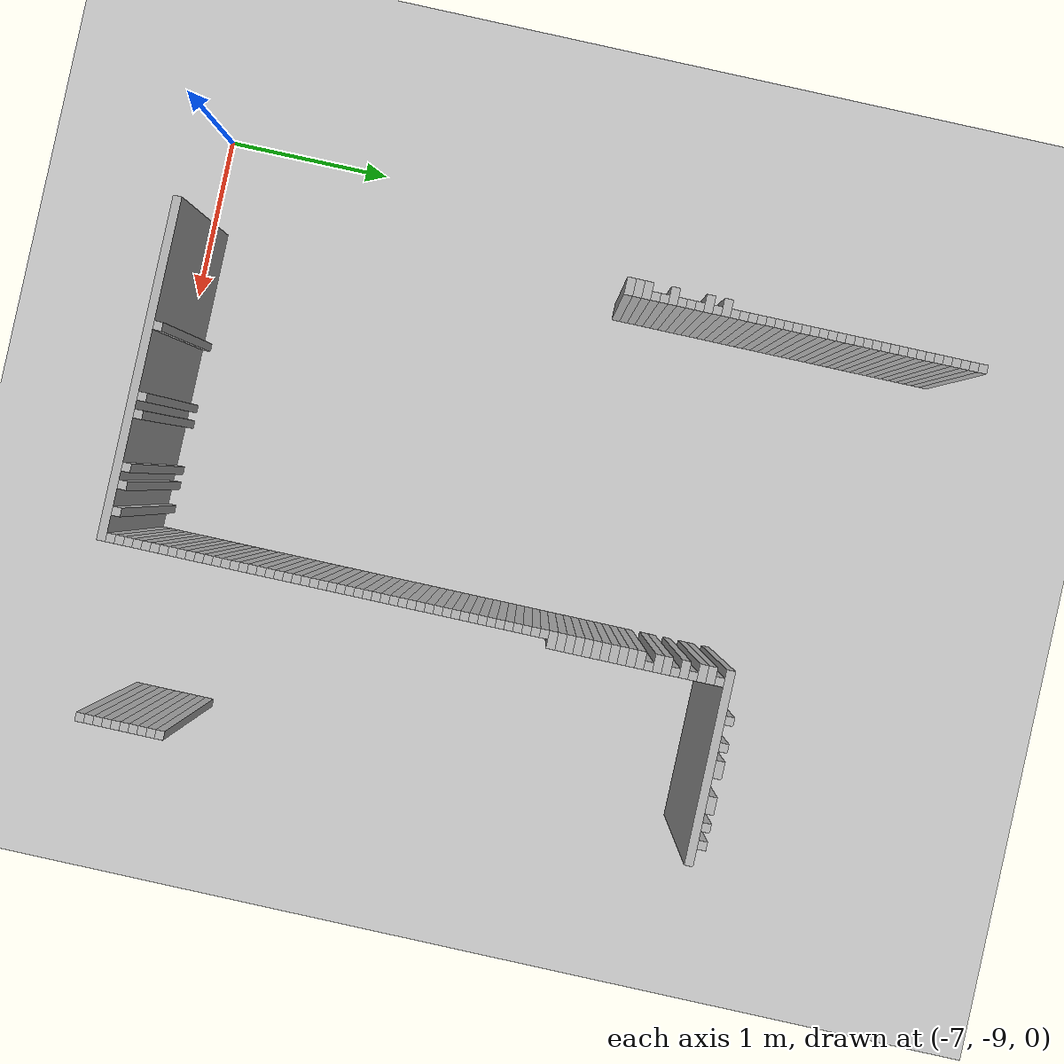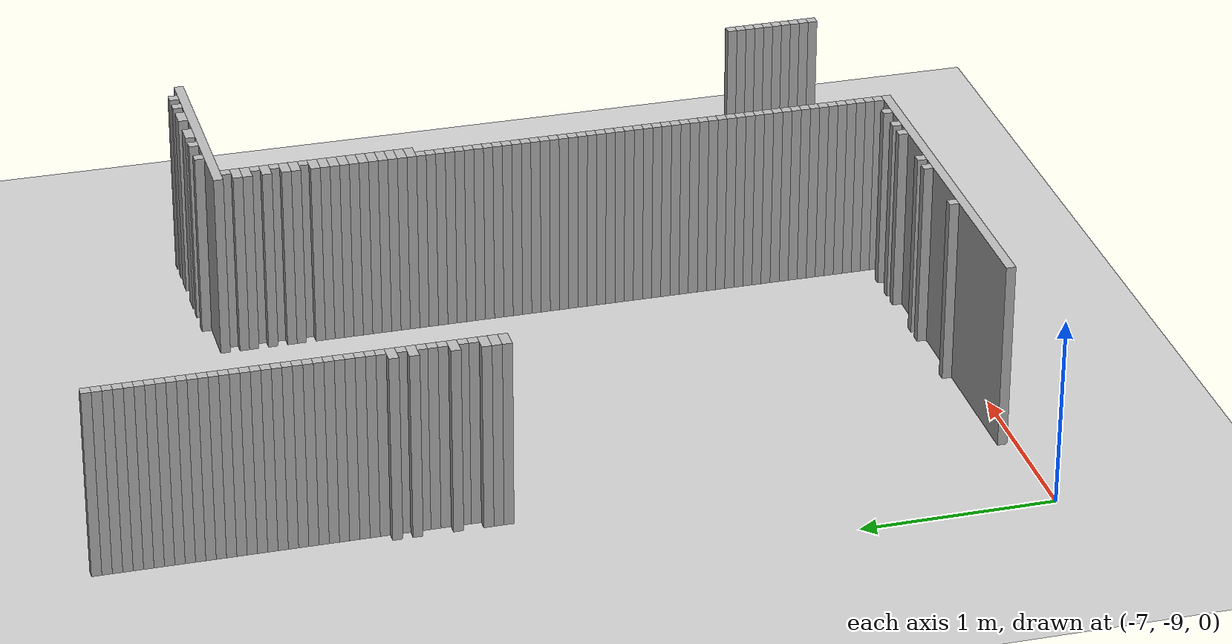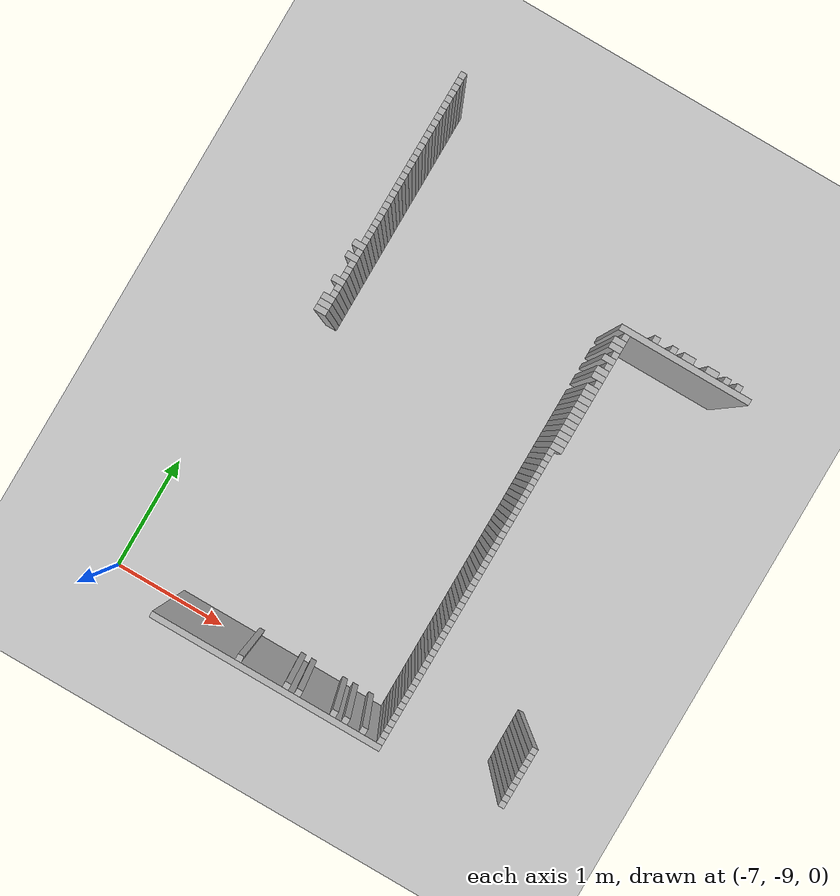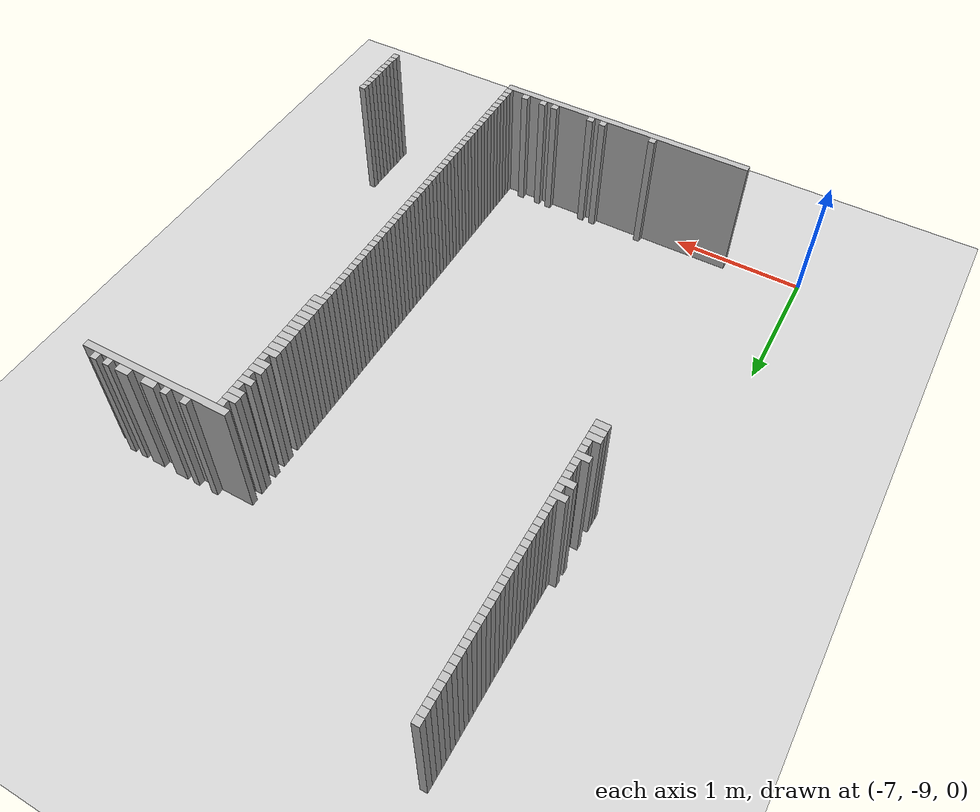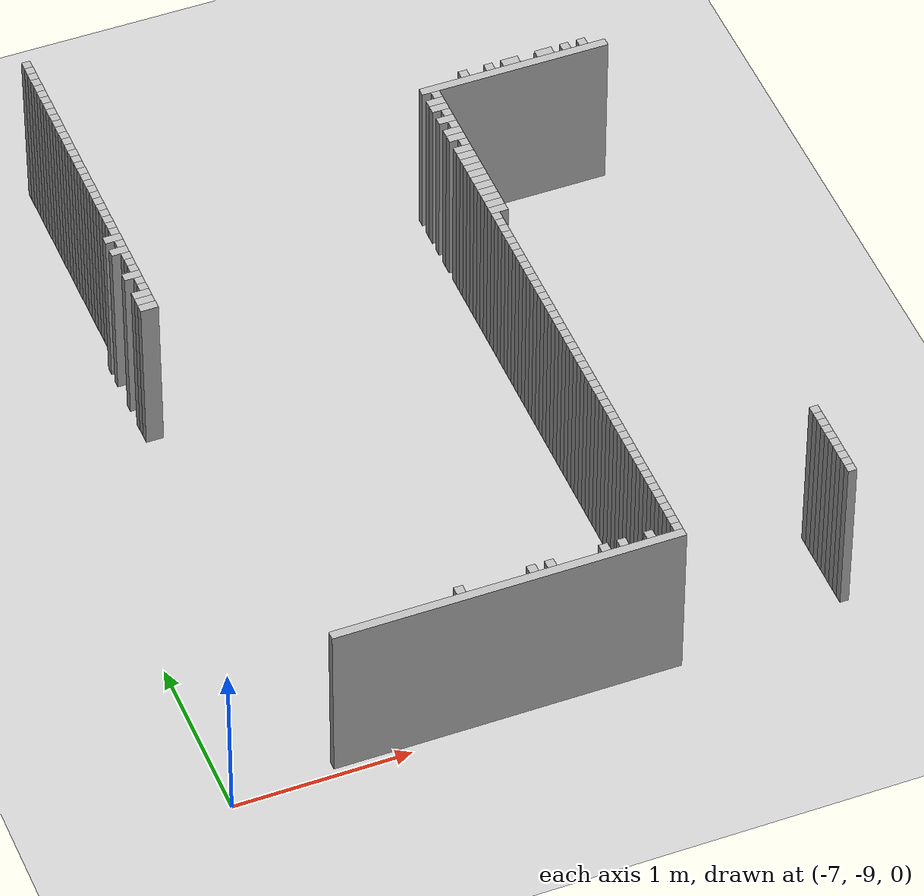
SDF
<sdf version="1.6">
 <world name="udh1_world">
  <include><uri>model://ground_plane</uri></include>
  <include><uri>model://sun</uri></include>
  <model name="wall_1964">
   <static>true</static>
   <pose>-6.444999999999999 -4.380000000000001 0.5 0 0 0</pose>
   <link name="link">
    <collision name="col"><geometry><box><size>0.05 0.05 1</size></box></geometry></collision>
    <visual name="vis"><geometry><box><size>0.05 0.05 1</size></box></geometry></visual>
   </link>
  </model>
  <model name="wall_1972">
   <static>true</static>
   <pose>-6.444999999999999 -4.430000000000001 0.5 0 0 0</pose>
   <link name="link">
    <collision name="col"><geometry><box><size>0.05 0.05 1</size></box></geometry></collision>
    <visual name="vis"><geometry><box><size>0.05 0.05 1</size></box></geometry></visual>
   </link>
  </model>
  <model name="wall_1980">
   <static>true</static>
   <pose>-6.444999999999999 -4.48 0.5 0 0 0</pose>
   <link name="link">
    <collision name="col"><geometry><box><size>0.05 0.05 1</size></box></geometry></collision>
    <visual name="vis"><geometry><box><size>0.05 0.05 1</size></box></geometry></visual>
   </link>
  </model>
  <model name="wall_1988">
   <static>true</static>
   <pose>-6.444999999999999 -4.53 0.5 0 0 0</pose>
   <link name="link">
    <collision name="col"><geometry><box><size>0.05 0.05 1</size></box></geometry></collision>
    <visual name="vis"><geometry><box><size>0.05 0.05 1</size></box></geometry></visual>
   </link>
  </model>
  <model name="wall_1996">
   <static>true</static>
   <pose>-6.444999999999999 -4.580000000000001 0.5 0 0 0</pose>
   <link name="link">
    <collision name="col"><geometry><box><size>0.05 0.05 1</size></box></geometry></collision>
    <visual name="vis"><geometry><box><size>0.05 0.05 1</size></box></geometry></visual>
   </link>
  </model>
  <model name="wall_2003">
   <static>true</static>
   <pose>-6.444999999999999 -4.630000000000001 0.5 0 0 0</pose>
   <link name="link">
    <collision name="col"><geometry><box><size>0.05 0.05 1</size></box></geometry></collision>
    <visual name="vis"><geometry><box><size>0.05 0.05 1</size></box></geometry></visual>
   </link>
  </model>
  <model name="wall_2011">
   <static>true</static>
   <pose>-6.444999999999999 -4.680000000000001 0.5 0 0 0</pose>
   <link name="link">
    <collision name="col"><geometry><box><size>0.05 0.05 1</size></box></geometry></collision>
    <visual name="vis"><geometry><box><size>0.05 0.05 1</size></box></geometry></visual>
   </link>
  </model>
  <model name="wall_2019">
   <static>true</static>
   <pose>-6.444999999999999 -4.73 0.5 0 0 0</pose>
   <link name="link">
    <collision name="col"><geometry><box><size>0.05 0.05 1</size></box></geometry></collision>
    <visual name="vis"><geometry><box><size>0.05 0.05 1</size></box></geometry></visual>
   </link>
  </model>
  <model name="wall_2027">
   <static>true</static>
   <pose>-6.444999999999999 -4.78 0.5 0 0 0</pose>
   <link name="link">
    <collision name="col"><geometry><box><size>0.05 0.05 1</size></box></geometry></collision>
    <visual name="vis"><geometry><box><size>0.05 0.05 1</size></box></geometry></visual>
   </link>
  </model>
  <model name="wall_2035">
   <static>true</static>
   <pose>-6.444999999999999 -4.830000000000001 0.5 0 0 0</pose>
   <link name="link">
    <collision name="col"><geometry><box><size>0.05 0.05 1</size></box></geometry></collision>
    <visual name="vis"><geometry><box><size>0.05 0.05 1</size></box></geometry></visual>
   </link>
  </model>
  <model name="wall_2043">
   <static>true</static>
   <pose>-6.444999999999999 -4.880000000000001 0.5 0 0 0</pose>
   <link name="link">
    <collision name="col"><geometry><box><size>0.05 0.05 1</size></box></geometry></collision>
    <visual name="vis"><geometry><box><size>0.05 0.05 1</size></box></geometry></visual>
   </link>
  </model>
  <model name="wall_2051">
   <static>true</static>
   <pose>-6.444999999999999 -4.930000000000001 0.5 0 0 0</pose>
   <link name="link">
    <collision name="col"><geometry><box><size>0.05 0.05 1</size></box></geometry></collision>
    <visual name="vis"><geometry><box><size>0.05 0.05 1</size></box></geometry></visual>
   </link>
  </model>
  <model name="wall_2059">
   <static>true</static>
   <pose>-6.444999999999999 -4.98 0.5 0 0 0</pose>
   <link name="link">
    <collision name="col"><geometry><box><size>0.05 0.05 1</size></box></geometry></collision>
    <visual name="vis"><geometry><box><size>0.05 0.05 1</size></box></geometry></visual>
   </link>
  </model>
  <model name="wall_2066">
   <static>true</static>
   <pose>-6.444999999999999 -5.03 0.5 0 0 0</pose>
   <link name="link">
    <collision name="col"><geometry><box><size>0.05 0.05 1</size></box></geometry></collision>
    <visual name="vis"><geometry><box><size>0.05 0.05 1</size></box></geometry></visual>
   </link>
  </model>
  <model name="wall_2072">
   <static>true</static>
   <pose>-6.444999999999999 -5.080000000000001 0.5 0 0 0</pose>
   <link name="link">
    <collision name="col"><geometry><box><size>0.05 0.05 1</size></box></geometry></collision>
    <visual name="vis"><geometry><box><size>0.05 0.05 1</size></box></geometry></visual>
   </link>
  </model>
  <model name="wall_2078">
   <static>true</static>
   <pose>-6.444999999999999 -5.130000000000001 0.5 0 0 0</pose>
   <link name="link">
    <collision name="col"><geometry><box><size>0.05 0.05 1</size></box></geometry></collision>
    <visual name="vis"><geometry><box><size>0.05 0.05 1</size></box></geometry></visual>
   </link>
  </model>
  <model name="wall_2084">
   <static>true</static>
   <pose>-6.444999999999999 -5.180000000000001 0.5 0 0 0</pose>
   <link name="link">
    <collision name="col"><geometry><box><size>0.05 0.05 1</size></box></geometry></collision>
    <visual name="vis"><geometry><box><size>0.05 0.05 1</size></box></geometry></visual>
   </link>
  </model>
  <model name="wall_2090">
   <static>true</static>
   <pose>-6.444999999999999 -5.23 0.5 0 0 0</pose>
   <link name="link">
    <collision name="col"><geometry><box><size>0.05 0.05 1</size></box></geometry></collision>
    <visual name="vis"><geometry><box><size>0.05 0.05 1</size></box></geometry></visual>
   </link>
  </model>
  <model name="wall_2096">
   <static>true</static>
   <pose>-6.444999999999999 -5.280000000000001 0.5 0 0 0</pose>
   <link name="link">
    <collision name="col"><geometry><box><size>0.05 0.05 1</size></box></geometry></collision>
    <visual name="vis"><geometry><box><size>0.05 0.05 1</size></box></geometry></visual>
   </link>
  </model>
  <model name="wall_2102">
   <static>true</static>
   <pose>-6.444999999999999 -5.33 0.5 0 0 0</pose>
   <link name="link">
    <collision name="col"><geometry><box><size>0.05 0.05 1</size></box></geometry></collision>
    <visual name="vis"><geometry><box><size>0.05 0.05 1</size></box></geometry></visual>
   </link>
  </model>
  <model name="wall_2103">
   <static>true</static>
   <pose>-4.244999999999999 -5.33 0.5 0 0 0</pose>
   <link name="link">
    <collision name="col"><geometry><box><size>0.05 0.05 1</size></box></geometry></collision>
    <visual name="vis"><geometry><box><size>0.05 0.05 1</size></box></geometry></visual>
   </link>
  </model>
  <model name="wall_2104">
   <static>true</static>
   <pose>-4.094999999999999 -5.33 0.5 0 0 0</pose>
   <link name="link">
    <collision name="col"><geometry><box><size>0.05 0.05 1</size></box></geometry></collision>
    <visual name="vis"><geometry><box><size>0.05 0.05 1</size></box></geometry></visual>
   </link>
  </model>
  <model name="wall_2105">
   <static>true</static>
   <pose>-3.969999999999999 -5.33 0.5 0 0 0</pose>
   <link name="link">
    <collision name="col"><geometry><box><size>0.1 0.05 1</size></box></geometry></collision>
    <visual name="vis"><geometry><box><size>0.1 0.05 1</size></box></geometry></visual>
   </link>
  </model>
  <model name="wall_2106">
   <static>true</static>
   <pose>-3.7699999999999996 -5.33 0.5 0 0 0</pose>
   <link name="link">
    <collision name="col"><geometry><box><size>0.1 0.05 1</size></box></geometry></collision>
    <visual name="vis"><geometry><box><size>0.1 0.05 1</size></box></geometry></visual>
   </link>
  </model>
  <model name="wall_2107">
   <static>true</static>
   <pose>-3.6449999999999996 -5.33 0.5 0 0 0</pose>
   <link name="link">
    <collision name="col"><geometry><box><size>0.05 0.05 1</size></box></geometry></collision>
    <visual name="vis"><geometry><box><size>0.05 0.05 1</size></box></geometry></visual>
   </link>
  </model>
  <model name="wall_2108">
   <static>true</static>
   <pose>-3.544999999999999 -5.33 0.5 0 0 0</pose>
   <link name="link">
    <collision name="col"><geometry><box><size>0.05 0.05 1</size></box></geometry></collision>
    <visual name="vis"><geometry><box><size>0.05 0.05 1</size></box></geometry></visual>
   </link>
  </model>
  <model name="wall_2114">
   <static>true</static>
   <pose>-6.444999999999999 -5.380000000000001 0.5 0 0 0</pose>
   <link name="link">
    <collision name="col"><geometry><box><size>0.05 0.05 1</size></box></geometry></collision>
    <visual name="vis"><geometry><box><size>0.05 0.05 1</size></box></geometry></visual>
   </link>
  </model>
  <model name="wall_2115">
   <static>true</static>
   <pose>-3.969999999999999 -5.380000000000001 0.5 0 0 0</pose>
   <link name="link">
    <collision name="col"><geometry><box><size>1.1 0.05 1</size></box></geometry></collision>
    <visual name="vis"><geometry><box><size>1.1 0.05 1</size></box></geometry></visual>
   </link>
  </model>
  <model name="wall_2121">
   <static>true</static>
   <pose>-6.444999999999999 -5.430000000000001 0.5 0 0 0</pose>
   <link name="link">
    <collision name="col"><geometry><box><size>0.05 0.05 1</size></box></geometry></collision>
    <visual name="vis"><geometry><box><size>0.05 0.05 1</size></box></geometry></visual>
   </link>
  </model>
  <model name="wall_2122">
   <static>true</static>
   <pose>-4.444999999999999 -5.430000000000001 0.5 0 0 0</pose>
   <link name="link">
    <collision name="col"><geometry><box><size>0.05 0.05 1</size></box></geometry></collision>
    <visual name="vis"><geometry><box><size>0.05 0.05 1</size></box></geometry></visual>
   </link>
  </model>
  <model name="wall_2129">
   <static>true</static>
   <pose>-6.444999999999999 -5.48 0.5 0 0 0</pose>
   <link name="link">
    <collision name="col"><geometry><box><size>0.05 0.05 1</size></box></geometry></collision>
    <visual name="vis"><geometry><box><size>0.05 0.05 1</size></box></geometry></visual>
   </link>
  </model>
  <model name="wall_2130">
   <static>true</static>
   <pose>-4.47 -5.48 0.5 0 0 0</pose>
   <link name="link">
    <collision name="col"><geometry><box><size>0.1 0.05 1</size></box></geometry></collision>
    <visual name="vis"><geometry><box><size>0.1 0.05 1</size></box></geometry></visual>
   </link>
  </model>
  <model name="wall_2140">
   <static>true</static>
   <pose>-6.444999999999999 -5.530000000000001 0.5 0 0 0</pose>
   <link name="link">
    <collision name="col"><geometry><box><size>0.05 0.05 1</size></box></geometry></collision>
    <visual name="vis"><geometry><box><size>0.05 0.05 1</size></box></geometry></visual>
   </link>
  </model>
  <model name="wall_2141">
   <static>true</static>
   <pose>-4.47 -5.530000000000001 0.5 0 0 0</pose>
   <link name="link">
    <collision name="col"><geometry><box><size>0.1 0.05 1</size></box></geometry></collision>
    <visual name="vis"><geometry><box><size>0.1 0.05 1</size></box></geometry></visual>
   </link>
  </model>
  <model name="wall_2148">
   <static>true</static>
   <pose>-6.444999999999999 -5.58 0.5 0 0 0</pose>
   <link name="link">
    <collision name="col"><geometry><box><size>0.05 0.05 1</size></box></geometry></collision>
    <visual name="vis"><geometry><box><size>0.05 0.05 1</size></box></geometry></visual>
   </link>
  </model>
  <model name="wall_2149">
   <static>true</static>
   <pose>-4.444999999999999 -5.58 0.5 0 0 0</pose>
   <link name="link">
    <collision name="col"><geometry><box><size>0.05 0.05 1</size></box></geometry></collision>
    <visual name="vis"><geometry><box><size>0.05 0.05 1</size></box></geometry></visual>
   </link>
  </model>
  <model name="wall_2156">
   <static>true</static>
   <pose>-6.444999999999999 -5.630000000000001 0.5 0 0 0</pose>
   <link name="link">
    <collision name="col"><geometry><box><size>0.05 0.05 1</size></box></geometry></collision>
    <visual name="vis"><geometry><box><size>0.05 0.05 1</size></box></geometry></visual>
   </link>
  </model>
  <model name="wall_2157">
   <static>true</static>
   <pose>-4.47 -5.630000000000001 0.5 0 0 0</pose>
   <link name="link">
    <collision name="col"><geometry><box><size>0.1 0.05 1</size></box></geometry></collision>
    <visual name="vis"><geometry><box><size>0.1 0.05 1</size></box></geometry></visual>
   </link>
  </model>
  <model name="wall_2164">
   <static>true</static>
   <pose>-6.444999999999999 -5.680000000000001 0.5 0 0 0</pose>
   <link name="link">
    <collision name="col"><geometry><box><size>0.05 0.05 1</size></box></geometry></collision>
    <visual name="vis"><geometry><box><size>0.05 0.05 1</size></box></geometry></visual>
   </link>
  </model>
  <model name="wall_2165">
   <static>true</static>
   <pose>-4.444999999999999 -5.680000000000001 0.5 0 0 0</pose>
   <link name="link">
    <collision name="col"><geometry><box><size>0.05 0.05 1</size></box></geometry></collision>
    <visual name="vis"><geometry><box><size>0.05 0.05 1</size></box></geometry></visual>
   </link>
  </model>
  <model name="wall_2172">
   <static>true</static>
   <pose>-6.444999999999999 -5.73 0.5 0 0 0</pose>
   <link name="link">
    <collision name="col"><geometry><box><size>0.05 0.05 1</size></box></geometry></collision>
    <visual name="vis"><geometry><box><size>0.05 0.05 1</size></box></geometry></visual>
   </link>
  </model>
  <model name="wall_2173">
   <static>true</static>
   <pose>-4.47 -5.73 0.5 0 0 0</pose>
   <link name="link">
    <collision name="col"><geometry><box><size>0.1 0.05 1</size></box></geometry></collision>
    <visual name="vis"><geometry><box><size>0.1 0.05 1</size></box></geometry></visual>
   </link>
  </model>
  <model name="wall_2180">
   <static>true</static>
   <pose>-6.444999999999999 -5.780000000000001 0.5 0 0 0</pose>
   <link name="link">
    <collision name="col"><geometry><box><size>0.05 0.05 1</size></box></geometry></collision>
    <visual name="vis"><geometry><box><size>0.05 0.05 1</size></box></geometry></visual>
   </link>
  </model>
  <model name="wall_2181">
   <static>true</static>
   <pose>-4.47 -5.780000000000001 0.5 0 0 0</pose>
   <link name="link">
    <collision name="col"><geometry><box><size>0.1 0.05 1</size></box></geometry></collision>
    <visual name="vis"><geometry><box><size>0.1 0.05 1</size></box></geometry></visual>
   </link>
  </model>
  <model name="wall_2188">
   <static>true</static>
   <pose>-6.469999999999999 -5.83 0.5 0 0 0</pose>
   <link name="link">
    <collision name="col"><geometry><box><size>0.1 0.05 1</size></box></geometry></collision>
    <visual name="vis"><geometry><box><size>0.1 0.05 1</size></box></geometry></visual>
   </link>
  </model>
  <model name="wall_2189">
   <static>true</static>
   <pose>-4.444999999999999 -5.83 0.5 0 0 0</pose>
   <link name="link">
    <collision name="col"><geometry><box><size>0.05 0.05 1</size></box></geometry></collision>
    <visual name="vis"><geometry><box><size>0.05 0.05 1</size></box></geometry></visual>
   </link>
  </model>
  <model name="wall_2196">
   <static>true</static>
   <pose>-6.444999999999999 -5.880000000000001 0.5 0 0 0</pose>
   <link name="link">
    <collision name="col"><geometry><box><size>0.05 0.05 1</size></box></geometry></collision>
    <visual name="vis"><geometry><box><size>0.05 0.05 1</size></box></geometry></visual>
   </link>
  </model>
  <model name="wall_2197">
   <static>true</static>
   <pose>-4.47 -5.880000000000001 0.5 0 0 0</pose>
   <link name="link">
    <collision name="col"><geometry><box><size>0.1 0.05 1</size></box></geometry></collision>
    <visual name="vis"><geometry><box><size>0.1 0.05 1</size></box></geometry></visual>
   </link>
  </model>
  <model name="wall_2204">
   <static>true</static>
   <pose>-6.469999999999999 -5.930000000000001 0.5 0 0 0</pose>
   <link name="link">
    <collision name="col"><geometry><box><size>0.1 0.05 1</size></box></geometry></collision>
    <visual name="vis"><geometry><box><size>0.1 0.05 1</size></box></geometry></visual>
   </link>
  </model>
  <model name="wall_2205">
   <static>true</static>
   <pose>-4.47 -5.930000000000001 0.5 0 0 0</pose>
   <link name="link">
    <collision name="col"><geometry><box><size>0.1 0.05 1</size></box></geometry></collision>
    <visual name="vis"><geometry><box><size>0.1 0.05 1</size></box></geometry></visual>
   </link>
  </model>
  <model name="wall_2212">
   <static>true</static>
   <pose>-6.444999999999999 -5.98 0.5 0 0 0</pose>
   <link name="link">
    <collision name="col"><geometry><box><size>0.05 0.05 1</size></box></geometry></collision>
    <visual name="vis"><geometry><box><size>0.05 0.05 1</size></box></geometry></visual>
   </link>
  </model>
  <model name="wall_2213">
   <static>true</static>
   <pose>-4.47 -5.98 0.5 0 0 0</pose>
   <link name="link">
    <collision name="col"><geometry><box><size>0.1 0.05 1</size></box></geometry></collision>
    <visual name="vis"><geometry><box><size>0.1 0.05 1</size></box></geometry></visual>
   </link>
  </model>
  <model name="wall_2220">
   <static>true</static>
   <pose>-6.444999999999999 -6.030000000000001 0.5 0 0 0</pose>
   <link name="link">
    <collision name="col"><geometry><box><size>0.05 0.05 1</size></box></geometry></collision>
    <visual name="vis"><geometry><box><size>0.05 0.05 1</size></box></geometry></visual>
   </link>
  </model>
  <model name="wall_2221">
   <static>true</static>
   <pose>-4.47 -6.030000000000001 0.5 0 0 0</pose>
   <link name="link">
    <collision name="col"><geometry><box><size>0.1 0.05 1</size></box></geometry></collision>
    <visual name="vis"><geometry><box><size>0.1 0.05 1</size></box></geometry></visual>
   </link>
  </model>
  <model name="wall_2228">
   <static>true</static>
   <pose>-6.444999999999999 -6.08 0.5 0 0 0</pose>
   <link name="link">
    <collision name="col"><geometry><box><size>0.05 0.05 1</size></box></geometry></collision>
    <visual name="vis"><geometry><box><size>0.05 0.05 1</size></box></geometry></visual>
   </link>
  </model>
  <model name="wall_2229">
   <static>true</static>
   <pose>-4.47 -6.08 0.5 0 0 0</pose>
   <link name="link">
    <collision name="col"><geometry><box><size>0.1 0.05 1</size></box></geometry></collision>
    <visual name="vis"><geometry><box><size>0.1 0.05 1</size></box></geometry></visual>
   </link>
  </model>
  <model name="wall_2236">
   <static>true</static>
   <pose>-6.469999999999999 -6.130000000000001 0.5 0 0 0</pose>
   <link name="link">
    <collision name="col"><geometry><box><size>0.1 0.05 1</size></box></geometry></collision>
    <visual name="vis"><geometry><box><size>0.1 0.05 1</size></box></geometry></visual>
   </link>
  </model>
  <model name="wall_2237">
   <static>true</static>
   <pose>-4.47 -6.130000000000001 0.5 0 0 0</pose>
   <link name="link">
    <collision name="col"><geometry><box><size>0.1 0.05 1</size></box></geometry></collision>
    <visual name="vis"><geometry><box><size>0.1 0.05 1</size></box></geometry></visual>
   </link>
  </model>
  <model name="wall_2244">
   <static>true</static>
   <pose>-6.444999999999999 -6.180000000000001 0.5 0 0 0</pose>
   <link name="link">
    <collision name="col"><geometry><box><size>0.05 0.05 1</size></box></geometry></collision>
    <visual name="vis"><geometry><box><size>0.05 0.05 1</size></box></geometry></visual>
   </link>
  </model>
  <model name="wall_2245">
   <static>true</static>
   <pose>-4.47 -6.180000000000001 0.5 0 0 0</pose>
   <link name="link">
    <collision name="col"><geometry><box><size>0.1 0.05 1</size></box></geometry></collision>
    <visual name="vis"><geometry><box><size>0.1 0.05 1</size></box></geometry></visual>
   </link>
  </model>
  <model name="wall_2252">
   <static>true</static>
   <pose>-6.444999999999999 -6.23 0.5 0 0 0</pose>
   <link name="link">
    <collision name="col"><geometry><box><size>0.05 0.05 1</size></box></geometry></collision>
    <visual name="vis"><geometry><box><size>0.05 0.05 1</size></box></geometry></visual>
   </link>
  </model>
  <model name="wall_2253">
   <static>true</static>
   <pose>-4.47 -6.23 0.5 0 0 0</pose>
   <link name="link">
    <collision name="col"><geometry><box><size>0.1 0.05 1</size></box></geometry></collision>
    <visual name="vis"><geometry><box><size>0.1 0.05 1</size></box></geometry></visual>
   </link>
  </model>
  <model name="wall_2260">
   <static>true</static>
   <pose>-6.469999999999999 -6.280000000000001 0.5 0 0 0</pose>
   <link name="link">
    <collision name="col"><geometry><box><size>0.1 0.05 1</size></box></geometry></collision>
    <visual name="vis"><geometry><box><size>0.1 0.05 1</size></box></geometry></visual>
   </link>
  </model>
  <model name="wall_2261">
   <static>true</static>
   <pose>-4.47 -6.280000000000001 0.5 0 0 0</pose>
   <link name="link">
    <collision name="col"><geometry><box><size>0.1 0.05 1</size></box></geometry></collision>
    <visual name="vis"><geometry><box><size>0.1 0.05 1</size></box></geometry></visual>
   </link>
  </model>
  <model name="wall_2268">
   <static>true</static>
   <pose>-6.469999999999999 -6.33 0.5 0 0 0</pose>
   <link name="link">
    <collision name="col"><geometry><box><size>0.1 0.05 1</size></box></geometry></collision>
    <visual name="vis"><geometry><box><size>0.1 0.05 1</size></box></geometry></visual>
   </link>
  </model>
  <model name="wall_2269">
   <static>true</static>
   <pose>-4.47 -6.33 0.5 0 0 0</pose>
   <link name="link">
    <collision name="col"><geometry><box><size>0.1 0.05 1</size></box></geometry></collision>
    <visual name="vis"><geometry><box><size>0.1 0.05 1</size></box></geometry></visual>
   </link>
  </model>
  <model name="wall_2276">
   <static>true</static>
   <pose>-6.469999999999999 -6.380000000000001 0.5 0 0 0</pose>
   <link name="link">
    <collision name="col"><geometry><box><size>0.1 0.05 1</size></box></geometry></collision>
    <visual name="vis"><geometry><box><size>0.1 0.05 1</size></box></geometry></visual>
   </link>
  </model>
  <model name="wall_2277">
   <static>true</static>
   <pose>-4.47 -6.380000000000001 0.5 0 0 0</pose>
   <link name="link">
    <collision name="col"><geometry><box><size>0.1 0.05 1</size></box></geometry></collision>
    <visual name="vis"><geometry><box><size>0.1 0.05 1</size></box></geometry></visual>
   </link>
  </model>
  <model name="wall_2284">
   <static>true</static>
   <pose>-4.494999999999999 -6.430000000000001 0.5 0 0 0</pose>
   <link name="link">
    <collision name="col"><geometry><box><size>0.05 0.05 1</size></box></geometry></collision>
    <visual name="vis"><geometry><box><size>0.05 0.05 1</size></box></geometry></visual>
   </link>
  </model>
  <model name="wall_2290">
   <static>true</static>
   <pose>-4.494999999999999 -6.48 0.5 0 0 0</pose>
   <link name="link">
    <collision name="col"><geometry><box><size>0.05 0.05 1</size></box></geometry></collision>
    <visual name="vis"><geometry><box><size>0.05 0.05 1</size></box></geometry></visual>
   </link>
  </model>
  <model name="wall_2296">
   <static>true</static>
   <pose>-4.494999999999999 -6.530000000000001 0.5 0 0 0</pose>
   <link name="link">
    <collision name="col"><geometry><box><size>0.05 0.05 1</size></box></geometry></collision>
    <visual name="vis"><geometry><box><size>0.05 0.05 1</size></box></geometry></visual>
   </link>
  </model>
  <model name="wall_2302">
   <static>true</static>
   <pose>-4.494999999999999 -6.58 0.5 0 0 0</pose>
   <link name="link">
    <collision name="col"><geometry><box><size>0.05 0.05 1</size></box></geometry></collision>
    <visual name="vis"><geometry><box><size>0.05 0.05 1</size></box></geometry></visual>
   </link>
  </model>
  <model name="wall_2307">
   <static>true</static>
   <pose>-4.494999999999999 -6.630000000000001 0.5 0 0 0</pose>
   <link name="link">
    <collision name="col"><geometry><box><size>0.05 0.05 1</size></box></geometry></collision>
    <visual name="vis"><geometry><box><size>0.05 0.05 1</size></box></geometry></visual>
   </link>
  </model>
  <model name="wall_2313">
   <static>true</static>
   <pose>-4.494999999999999 -6.680000000000001 0.5 0 0 0</pose>
   <link name="link">
    <collision name="col"><geometry><box><size>0.05 0.05 1</size></box></geometry></collision>
    <visual name="vis"><geometry><box><size>0.05 0.05 1</size></box></geometry></visual>
   </link>
  </model>
  <model name="wall_2317">
   <static>true</static>
   <pose>-4.494999999999999 -6.73 0.5 0 0 0</pose>
   <link name="link">
    <collision name="col"><geometry><box><size>0.05 0.05 1</size></box></geometry></collision>
    <visual name="vis"><geometry><box><size>0.05 0.05 1</size></box></geometry></visual>
   </link>
  </model>
  <model name="wall_2321">
   <static>true</static>
   <pose>-4.494999999999999 -6.780000000000001 0.5 0 0 0</pose>
   <link name="link">
    <collision name="col"><geometry><box><size>0.05 0.05 1</size></box></geometry></collision>
    <visual name="vis"><geometry><box><size>0.05 0.05 1</size></box></geometry></visual>
   </link>
  </model>
  <model name="wall_2325">
   <static>true</static>
   <pose>-4.494999999999999 -6.83 0.5 0 0 0</pose>
   <link name="link">
    <collision name="col"><geometry><box><size>0.05 0.05 1</size></box></geometry></collision>
    <visual name="vis"><geometry><box><size>0.05 0.05 1</size></box></geometry></visual>
   </link>
  </model>
  <model name="wall_2329">
   <static>true</static>
   <pose>-4.494999999999999 -6.880000000000001 0.5 0 0 0</pose>
   <link name="link">
    <collision name="col"><geometry><box><size>0.05 0.05 1</size></box></geometry></collision>
    <visual name="vis"><geometry><box><size>0.05 0.05 1</size></box></geometry></visual>
   </link>
  </model>
  <model name="wall_2335">
   <static>true</static>
   <pose>-4.494999999999999 -6.930000000000001 0.5 0 0 0</pose>
   <link name="link">
    <collision name="col"><geometry><box><size>0.05 0.05 1</size></box></geometry></collision>
    <visual name="vis"><geometry><box><size>0.05 0.05 1</size></box></geometry></visual>
   </link>
  </model>
  <model name="wall_2340">
   <static>true</static>
   <pose>-4.494999999999999 -6.98 0.5 0 0 0</pose>
   <link name="link">
    <collision name="col"><geometry><box><size>0.05 0.05 1</size></box></geometry></collision>
    <visual name="vis"><geometry><box><size>0.05 0.05 1</size></box></geometry></visual>
   </link>
  </model>
  <model name="wall_2346">
   <static>true</static>
   <pose>-4.494999999999999 -7.030000000000001 0.5 0 0 0</pose>
   <link name="link">
    <collision name="col"><geometry><box><size>0.05 0.05 1</size></box></geometry></collision>
    <visual name="vis"><geometry><box><size>0.05 0.05 1</size></box></geometry></visual>
   </link>
  </model>
  <model name="wall_2352">
   <static>true</static>
   <pose>-4.494999999999999 -7.08 0.5 0 0 0</pose>
   <link name="link">
    <collision name="col"><geometry><box><size>0.05 0.05 1</size></box></geometry></collision>
    <visual name="vis"><geometry><box><size>0.05 0.05 1</size></box></geometry></visual>
   </link>
  </model>
  <model name="wall_2358">
   <static>true</static>
   <pose>-4.494999999999999 -7.130000000000001 0.5 0 0 0</pose>
   <link name="link">
    <collision name="col"><geometry><box><size>0.05 0.05 1</size></box></geometry></collision>
    <visual name="vis"><geometry><box><size>0.05 0.05 1</size></box></geometry></visual>
   </link>
  </model>
  <model name="wall_2364">
   <static>true</static>
   <pose>-4.494999999999999 -7.180000000000001 0.5 0 0 0</pose>
   <link name="link">
    <collision name="col"><geometry><box><size>0.05 0.05 1</size></box></geometry></collision>
    <visual name="vis"><geometry><box><size>0.05 0.05 1</size></box></geometry></visual>
   </link>
  </model>
  <model name="wall_2370">
   <static>true</static>
   <pose>-4.494999999999999 -7.23 0.5 0 0 0</pose>
   <link name="link">
    <collision name="col"><geometry><box><size>0.05 0.05 1</size></box></geometry></collision>
    <visual name="vis"><geometry><box><size>0.05 0.05 1</size></box></geometry></visual>
   </link>
  </model>
  <model name="wall_2376">
   <static>true</static>
   <pose>-4.494999999999999 -7.280000000000001 0.5 0 0 0</pose>
   <link name="link">
    <collision name="col"><geometry><box><size>0.05 0.05 1</size></box></geometry></collision>
    <visual name="vis"><geometry><box><size>0.05 0.05 1</size></box></geometry></visual>
   </link>
  </model>
  <model name="wall_2382">
   <static>true</static>
   <pose>-4.494999999999999 -7.330000000000001 0.5 0 0 0</pose>
   <link name="link">
    <collision name="col"><geometry><box><size>0.05 0.05 1</size></box></geometry></collision>
    <visual name="vis"><geometry><box><size>0.05 0.05 1</size></box></geometry></visual>
   </link>
  </model>
  <model name="wall_2388">
   <static>true</static>
   <pose>-4.494999999999999 -7.380000000000001 0.5 0 0 0</pose>
   <link name="link">
    <collision name="col"><geometry><box><size>0.05 0.05 1</size></box></geometry></collision>
    <visual name="vis"><geometry><box><size>0.05 0.05 1</size></box></geometry></visual>
   </link>
  </model>
  <model name="wall_2394">
   <static>true</static>
   <pose>-4.494999999999999 -7.430000000000001 0.5 0 0 0</pose>
   <link name="link">
    <collision name="col"><geometry><box><size>0.05 0.05 1</size></box></geometry></collision>
    <visual name="vis"><geometry><box><size>0.05 0.05 1</size></box></geometry></visual>
   </link>
  </model>
  <model name="wall_2400">
   <static>true</static>
   <pose>-4.494999999999999 -7.48 0.5 0 0 0</pose>
   <link name="link">
    <collision name="col"><geometry><box><size>0.05 0.05 1</size></box></geometry></collision>
    <visual name="vis"><geometry><box><size>0.05 0.05 1</size></box></geometry></visual>
   </link>
  </model>
  <model name="wall_2406">
   <static>true</static>
   <pose>-4.494999999999999 -7.530000000000001 0.5 0 0 0</pose>
   <link name="link">
    <collision name="col"><geometry><box><size>0.05 0.05 1</size></box></geometry></collision>
    <visual name="vis"><geometry><box><size>0.05 0.05 1</size></box></geometry></visual>
   </link>
  </model>
  <model name="wall_2412">
   <static>true</static>
   <pose>-4.494999999999999 -7.580000000000001 0.5 0 0 0</pose>
   <link name="link">
    <collision name="col"><geometry><box><size>0.05 0.05 1</size></box></geometry></collision>
    <visual name="vis"><geometry><box><size>0.05 0.05 1</size></box></geometry></visual>
   </link>
  </model>
  <model name="wall_2418">
   <static>true</static>
   <pose>-4.494999999999999 -7.630000000000001 0.5 0 0 0</pose>
   <link name="link">
    <collision name="col"><geometry><box><size>0.05 0.05 1</size></box></geometry></collision>
    <visual name="vis"><geometry><box><size>0.05 0.05 1</size></box></geometry></visual>
   </link>
  </model>
  <model name="wall_2424">
   <static>true</static>
   <pose>-4.494999999999999 -7.680000000000001 0.5 0 0 0</pose>
   <link name="link">
    <collision name="col"><geometry><box><size>0.05 0.05 1</size></box></geometry></collision>
    <visual name="vis"><geometry><box><size>0.05 0.05 1</size></box></geometry></visual>
   </link>
  </model>
  <model name="wall_2430">
   <static>true</static>
   <pose>-4.494999999999999 -7.73 0.5 0 0 0</pose>
   <link name="link">
    <collision name="col"><geometry><box><size>0.05 0.05 1</size></box></geometry></collision>
    <visual name="vis"><geometry><box><size>0.05 0.05 1</size></box></geometry></visual>
   </link>
  </model>
  <model name="wall_2436">
   <static>true</static>
   <pose>-4.494999999999999 -7.780000000000001 0.5 0 0 0</pose>
   <link name="link">
    <collision name="col"><geometry><box><size>0.05 0.05 1</size></box></geometry></collision>
    <visual name="vis"><geometry><box><size>0.05 0.05 1</size></box></geometry></visual>
   </link>
  </model>
  <model name="wall_2442">
   <static>true</static>
   <pose>-4.494999999999999 -7.830000000000001 0.5 0 0 0</pose>
   <link name="link">
    <collision name="col"><geometry><box><size>0.05 0.05 1</size></box></geometry></collision>
    <visual name="vis"><geometry><box><size>0.05 0.05 1</size></box></geometry></visual>
   </link>
  </model>
  <model name="wall_2448">
   <static>true</static>
   <pose>-4.494999999999999 -7.880000000000001 0.5 0 0 0</pose>
   <link name="link">
    <collision name="col"><geometry><box><size>0.05 0.05 1</size></box></geometry></collision>
    <visual name="vis"><geometry><box><size>0.05 0.05 1</size></box></geometry></visual>
   </link>
  </model>
  <model name="wall_2454">
   <static>true</static>
   <pose>-4.494999999999999 -7.930000000000001 0.5 0 0 0</pose>
   <link name="link">
    <collision name="col"><geometry><box><size>0.05 0.05 1</size></box></geometry></collision>
    <visual name="vis"><geometry><box><size>0.05 0.05 1</size></box></geometry></visual>
   </link>
  </model>
  <model name="wall_2459">
   <static>true</static>
   <pose>-4.494999999999999 -7.98 0.5 0 0 0</pose>
   <link name="link">
    <collision name="col"><geometry><box><size>0.05 0.05 1</size></box></geometry></collision>
    <visual name="vis"><geometry><box><size>0.05 0.05 1</size></box></geometry></visual>
   </link>
  </model>
  <model name="wall_2464">
   <static>true</static>
   <pose>-4.494999999999999 -8.030000000000001 0.5 0 0 0</pose>
   <link name="link">
    <collision name="col"><geometry><box><size>0.05 0.05 1</size></box></geometry></collision>
    <visual name="vis"><geometry><box><size>0.05 0.05 1</size></box></geometry></visual>
   </link>
  </model>
  <model name="wall_2468">
   <static>true</static>
   <pose>-4.494999999999999 -8.08 0.5 0 0 0</pose>
   <link name="link">
    <collision name="col"><geometry><box><size>0.05 0.05 1</size></box></geometry></collision>
    <visual name="vis"><geometry><box><size>0.05 0.05 1</size></box></geometry></visual>
   </link>
  </model>
  <model name="wall_2472">
   <static>true</static>
   <pose>-4.494999999999999 -8.13 0.5 0 0 0</pose>
   <link name="link">
    <collision name="col"><geometry><box><size>0.05 0.05 1</size></box></geometry></collision>
    <visual name="vis"><geometry><box><size>0.05 0.05 1</size></box></geometry></visual>
   </link>
  </model>
  <model name="wall_2476">
   <static>true</static>
   <pose>-4.494999999999999 -8.180000000000001 0.5 0 0 0</pose>
   <link name="link">
    <collision name="col"><geometry><box><size>0.05 0.05 1</size></box></geometry></collision>
    <visual name="vis"><geometry><box><size>0.05 0.05 1</size></box></geometry></visual>
   </link>
  </model>
  <model name="wall_2480">
   <static>true</static>
   <pose>-4.494999999999999 -8.23 0.5 0 0 0</pose>
   <link name="link">
    <collision name="col"><geometry><box><size>0.05 0.05 1</size></box></geometry></collision>
    <visual name="vis"><geometry><box><size>0.05 0.05 1</size></box></geometry></visual>
   </link>
  </model>
  <model name="wall_2484">
   <static>true</static>
   <pose>-4.494999999999999 -8.280000000000001 0.5 0 0 0</pose>
   <link name="link">
    <collision name="col"><geometry><box><size>0.05 0.05 1</size></box></geometry></collision>
    <visual name="vis"><geometry><box><size>0.05 0.05 1</size></box></geometry></visual>
   </link>
  </model>
  <model name="wall_2488">
   <static>true</static>
   <pose>-4.494999999999999 -8.33 0.5 0 0 0</pose>
   <link name="link">
    <collision name="col"><geometry><box><size>0.05 0.05 1</size></box></geometry></collision>
    <visual name="vis"><geometry><box><size>0.05 0.05 1</size></box></geometry></visual>
   </link>
  </model>
  <model name="wall_2492">
   <static>true</static>
   <pose>-4.494999999999999 -8.38 0.5 0 0 0</pose>
   <link name="link">
    <collision name="col"><geometry><box><size>0.05 0.05 1</size></box></geometry></collision>
    <visual name="vis"><geometry><box><size>0.05 0.05 1</size></box></geometry></visual>
   </link>
  </model>
  <model name="wall_2493">
   <static>true</static>
   <pose>-3.494999999999999 -8.38 0.5 0 0 0</pose>
   <link name="link">
    <collision name="col"><geometry><box><size>0.05 0.05 1</size></box></geometry></collision>
    <visual name="vis"><geometry><box><size>0.05 0.05 1</size></box></geometry></visual>
   </link>
  </model>
  <model name="wall_2496">
   <static>true</static>
   <pose>-4.494999999999999 -8.430000000000001 0.5 0 0 0</pose>
   <link name="link">
    <collision name="col"><geometry><box><size>0.05 0.05 1</size></box></geometry></collision>
    <visual name="vis"><geometry><box><size>0.05 0.05 1</size></box></geometry></visual>
   </link>
  </model>
  <model name="wall_2497">
   <static>true</static>
   <pose>-3.494999999999999 -8.430000000000001 0.5 0 0 0</pose>
   <link name="link">
    <collision name="col"><geometry><box><size>0.05 0.05 1</size></box></geometry></collision>
    <visual name="vis"><geometry><box><size>0.05 0.05 1</size></box></geometry></visual>
   </link>
  </model>
  <model name="wall_2500">
   <static>true</static>
   <pose>-4.494999999999999 -8.48 0.5 0 0 0</pose>
   <link name="link">
    <collision name="col"><geometry><box><size>0.05 0.05 1</size></box></geometry></collision>
    <visual name="vis"><geometry><box><size>0.05 0.05 1</size></box></geometry></visual>
   </link>
  </model>
  <model name="wall_2501">
   <static>true</static>
   <pose>-3.494999999999999 -8.48 0.5 0 0 0</pose>
   <link name="link">
    <collision name="col"><geometry><box><size>0.05 0.05 1</size></box></geometry></collision>
    <visual name="vis"><geometry><box><size>0.05 0.05 1</size></box></geometry></visual>
   </link>
  </model>
  <model name="wall_2504">
   <static>true</static>
   <pose>-4.494999999999999 -8.530000000000001 0.5 0 0 0</pose>
   <link name="link">
    <collision name="col"><geometry><box><size>0.05 0.05 1</size></box></geometry></collision>
    <visual name="vis"><geometry><box><size>0.05 0.05 1</size></box></geometry></visual>
   </link>
  </model>
  <model name="wall_2505">
   <static>true</static>
   <pose>-3.494999999999999 -8.530000000000001 0.5 0 0 0</pose>
   <link name="link">
    <collision name="col"><geometry><box><size>0.05 0.05 1</size></box></geometry></collision>
    <visual name="vis"><geometry><box><size>0.05 0.05 1</size></box></geometry></visual>
   </link>
  </model>
  <model name="wall_2508">
   <static>true</static>
   <pose>-4.494999999999999 -8.58 0.5 0 0 0</pose>
   <link name="link">
    <collision name="col"><geometry><box><size>0.05 0.05 1</size></box></geometry></collision>
    <visual name="vis"><geometry><box><size>0.05 0.05 1</size></box></geometry></visual>
   </link>
  </model>
  <model name="wall_2509">
   <static>true</static>
   <pose>-3.494999999999999 -8.58 0.5 0 0 0</pose>
   <link name="link">
    <collision name="col"><geometry><box><size>0.05 0.05 1</size></box></geometry></collision>
    <visual name="vis"><geometry><box><size>0.05 0.05 1</size></box></geometry></visual>
   </link>
  </model>
  <model name="wall_2512">
   <static>true</static>
   <pose>-4.494999999999999 -8.63 0.5 0 0 0</pose>
   <link name="link">
    <collision name="col"><geometry><box><size>0.05 0.05 1</size></box></geometry></collision>
    <visual name="vis"><geometry><box><size>0.05 0.05 1</size></box></geometry></visual>
   </link>
  </model>
  <model name="wall_2513">
   <static>true</static>
   <pose>-3.494999999999999 -8.63 0.5 0 0 0</pose>
   <link name="link">
    <collision name="col"><geometry><box><size>0.05 0.05 1</size></box></geometry></collision>
    <visual name="vis"><geometry><box><size>0.05 0.05 1</size></box></geometry></visual>
   </link>
  </model>
  <model name="wall_2516">
   <static>true</static>
   <pose>-4.494999999999999 -8.680000000000001 0.5 0 0 0</pose>
   <link name="link">
    <collision name="col"><geometry><box><size>0.05 0.05 1</size></box></geometry></collision>
    <visual name="vis"><geometry><box><size>0.05 0.05 1</size></box></geometry></visual>
   </link>
  </model>
  <model name="wall_2517">
   <static>true</static>
   <pose>-3.494999999999999 -8.680000000000001 0.5 0 0 0</pose>
   <link name="link">
    <collision name="col"><geometry><box><size>0.05 0.05 1</size></box></geometry></collision>
    <visual name="vis"><geometry><box><size>0.05 0.05 1</size></box></geometry></visual>
   </link>
  </model>
  <model name="wall_2520">
   <static>true</static>
   <pose>-4.494999999999999 -8.73 0.5 0 0 0</pose>
   <link name="link">
    <collision name="col"><geometry><box><size>0.05 0.05 1</size></box></geometry></collision>
    <visual name="vis"><geometry><box><size>0.05 0.05 1</size></box></geometry></visual>
   </link>
  </model>
  <model name="wall_2521">
   <static>true</static>
   <pose>-3.494999999999999 -8.73 0.5 0 0 0</pose>
   <link name="link">
    <collision name="col"><geometry><box><size>0.05 0.05 1</size></box></geometry></collision>
    <visual name="vis"><geometry><box><size>0.05 0.05 1</size></box></geometry></visual>
   </link>
  </model>
  <model name="wall_2524">
   <static>true</static>
   <pose>-4.494999999999999 -8.780000000000001 0.5 0 0 0</pose>
   <link name="link">
    <collision name="col"><geometry><box><size>0.05 0.05 1</size></box></geometry></collision>
    <visual name="vis"><geometry><box><size>0.05 0.05 1</size></box></geometry></visual>
   </link>
  </model>
  <model name="wall_2525">
   <static>true</static>
   <pose>-3.494999999999999 -8.780000000000001 0.5 0 0 0</pose>
   <link name="link">
    <collision name="col"><geometry><box><size>0.05 0.05 1</size></box></geometry></collision>
    <visual name="vis"><geometry><box><size>0.05 0.05 1</size></box></geometry></visual>
   </link>
  </model>
  <model name="wall_2528">
   <static>true</static>
   <pose>-4.494999999999999 -8.83 0.5 0 0 0</pose>
   <link name="link">
    <collision name="col"><geometry><box><size>0.05 0.05 1</size></box></geometry></collision>
    <visual name="vis"><geometry><box><size>0.05 0.05 1</size></box></geometry></visual>
   </link>
  </model>
  <model name="wall_2529">
   <static>true</static>
   <pose>-3.494999999999999 -8.83 0.5 0 0 0</pose>
   <link name="link">
    <collision name="col"><geometry><box><size>0.05 0.05 1</size></box></geometry></collision>
    <visual name="vis"><geometry><box><size>0.05 0.05 1</size></box></geometry></visual>
   </link>
  </model>
  <model name="wall_2532">
   <static>true</static>
   <pose>-5.694999999999999 -8.88 0.5 0 0 0</pose>
   <link name="link">
    <collision name="col"><geometry><box><size>0.05 0.05 1</size></box></geometry></collision>
    <visual name="vis"><geometry><box><size>0.05 0.05 1</size></box></geometry></visual>
   </link>
  </model>
  <model name="wall_2533">
   <static>true</static>
   <pose>-5.295 -8.88 0.5 0 0 0</pose>
   <link name="link">
    <collision name="col"><geometry><box><size>0.05 0.05 1</size></box></geometry></collision>
    <visual name="vis"><geometry><box><size>0.05 0.05 1</size></box></geometry></visual>
   </link>
  </model>
  <model name="wall_2534">
   <static>true</static>
   <pose>-5.194999999999999 -8.88 0.5 0 0 0</pose>
   <link name="link">
    <collision name="col"><geometry><box><size>0.05 0.05 1</size></box></geometry></collision>
    <visual name="vis"><geometry><box><size>0.05 0.05 1</size></box></geometry></visual>
   </link>
  </model>
  <model name="wall_2535">
   <static>true</static>
   <pose>-4.895 -8.88 0.5 0 0 0</pose>
   <link name="link">
    <collision name="col"><geometry><box><size>0.05 0.05 1</size></box></geometry></collision>
    <visual name="vis"><geometry><box><size>0.05 0.05 1</size></box></geometry></visual>
   </link>
  </model>
  <model name="wall_2536">
   <static>true</static>
   <pose>-4.794999999999999 -8.88 0.5 0 0 0</pose>
   <link name="link">
    <collision name="col"><geometry><box><size>0.05 0.05 1</size></box></geometry></collision>
    <visual name="vis"><geometry><box><size>0.05 0.05 1</size></box></geometry></visual>
   </link>
  </model>
  <model name="wall_2537">
   <static>true</static>
   <pose>-4.645 -8.88 0.5 0 0 0</pose>
   <link name="link">
    <collision name="col"><geometry><box><size>0.05 0.05 1</size></box></geometry></collision>
    <visual name="vis"><geometry><box><size>0.05 0.05 1</size></box></geometry></visual>
   </link>
  </model>
  <model name="wall_2538">
   <static>true</static>
   <pose>-4.494999999999999 -8.88 0.5 0 0 0</pose>
   <link name="link">
    <collision name="col"><geometry><box><size>0.05 0.05 1</size></box></geometry></collision>
    <visual name="vis"><geometry><box><size>0.05 0.05 1</size></box></geometry></visual>
   </link>
  </model>
  <model name="wall_2549">
   <static>true</static>
   <pose>-5.444999999999999 -8.930000000000001 0.5 0 0 0</pose>
   <link name="link">
    <collision name="col"><geometry><box><size>1.9500000000000002 0.05 1</size></box></geometry></collision>
    <visual name="vis"><geometry><box><size>1.9500000000000002 0.05 1</size></box></geometry></visual>
   </link>
  </model>
 </world>
</sdf>
